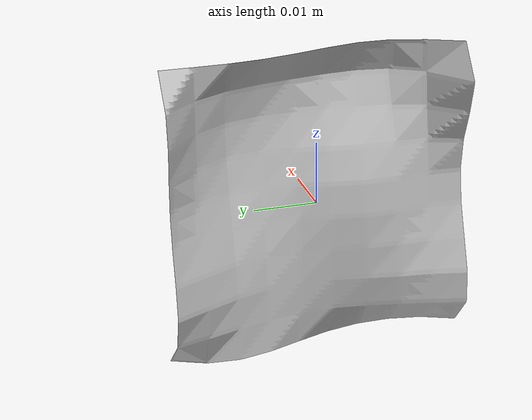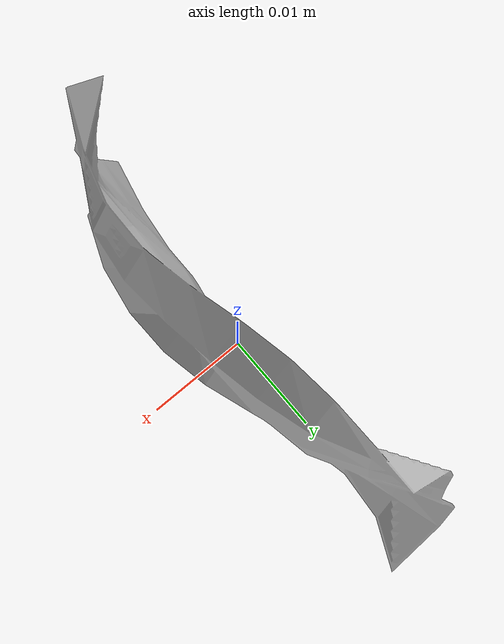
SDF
<?xml version='1.0'?>
<sdf version='1.6'>
  <model name="ID3_130">
  <static>true</static>
    <link name="link">
      <collision name="collision">
        <geometry>
          <mesh>
            <uri>model://test/meshes/ID3_130.dae</uri>
          </mesh>
        </geometry>
      </collision>

      <visual name='visual'>
        <geometry>
          <mesh>
            <uri>model://ID3_130/meshes/ID3_130.dae</uri>
          </mesh>
        </geometry>
      </visual>
    </link>

    </model>
  </sdf>
